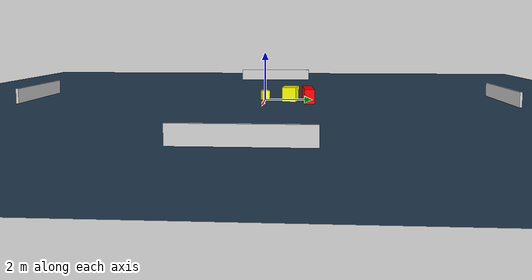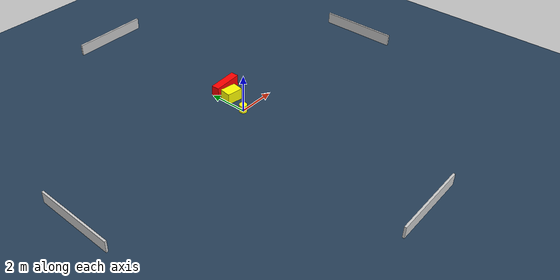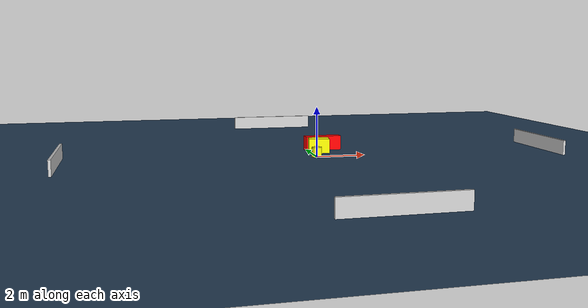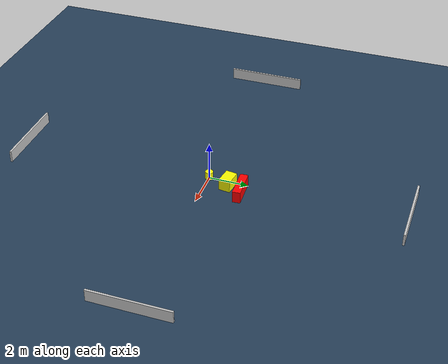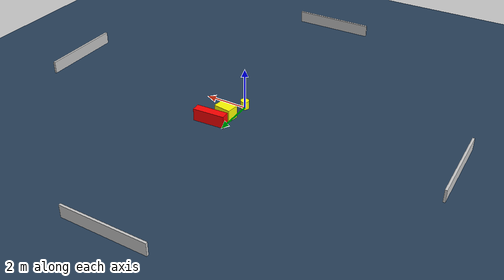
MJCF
<?xml version="1.0" ?>
<mujoco model="generated_environment">
  <option timestep="0.01" integrator="RK4" cone="elliptic"/>
  <default>
    <geom density="1"/>
  </default>
  <asset>
    <texture builtin="gradient" height="3072" name="skybox" rgb1="0.3 0.5 0.7" rgb2="0 0 0" type="skybox" width="512"/>
    <texture builtin="checker" height="300" name="groundplane" rgb1="0.2 0.3 0.4" rgb2="0.1 0.2 0.3" type="2d" width="300"/>
    <material name="groundplane" reflectance="0.2" texrepeat="5 5" texture="groundplane"/>
  </asset>
  <worldbody>
    <light dir="0 0 -1" directional="true" pos="0 0 1.5"/>
    <geom condim="3" friction="0.5 0.005 0.001" material="groundplane" name="floor" pos="0 0 0" size="0 0 0.05" type="plane"/>
    <body name="walls">
      <geom name="wall_1" condim="4" pos="-10.0 0.0 0.3" rgba="0.800000011920929 0.800000011920929 0.800000011920929 1.0" size="0.05 2.0 0.3" type="box"/>
      <geom name="wall_2" condim="4" pos="10.0 0.0 0.3" rgba="0.800000011920929 0.800000011920929 0.800000011920929 1.0" size="0.05 2.0 0.3" type="box"/>
      <geom name="wall_3" condim="4" pos="0.0 -10.0 0.3" rgba="0.800000011920929 0.800000011920929 0.800000011920929 1.0" size="2.0 0.05 0.3" type="box"/>
      <geom name="wall_4" condim="4" pos="0.0 10.0 0.3" rgba="0.800000011920929 0.800000011920929 0.800000011920929 1.0" size="2.0 0.05 0.3" type="box"/>
    </body>
    <body name="robot">
      <joint name="joint_x" type="slide" pos="0 0 0" axis="1 0 0"/>
      <joint name="joint_y" type="slide" pos="0 0 0" axis="0 1 0"/>
      <geom name="robot" type="cylinder" pos="0.0 0.0 0.2" size="0.2 0.2 0.0" mass="5.0" friction="1.0 0.005 0.0001" condim="4" rgba="1.0 1.0 0.0 1.0"/>
    </body>
    <body name="obstacle_1_movable">
      <geom name="obstacle_1_movable" condim="4" pos="0.35720750892623837 1.0962866540971978 0.3" euler="0 0 351.4390634677127" friction="0.0 0.005 0.001" rgba="1.0 1.0 0.0 1.0" size="0.4230339801368836 0.29190023167768064 0.3" type="box" mass="0.1"/>
      <joint type="free"/>
    </body>
    <body name="obstacle_2_static">
      <geom name="obstacle_2_static" condim="4" pos="0.7046748723562904 1.8380693436705506 0.3" euler="0 0 183.0615851281248" friction="0.0 0.005 0.001" rgba="1.0 0.0 0.0 1.0" size="0.7704871068829764 0.20185684059927578 0.3" type="box"/>
    </body>
  </worldbody>
  <actuator>
    <motor name="actuator_x" joint="joint_x" gear="1" ctrlrange="-1 1"/>
    <motor name="actuator_y" joint="joint_y" gear="1" ctrlrange="-1 1"/>
  </actuator>
</mujoco>
